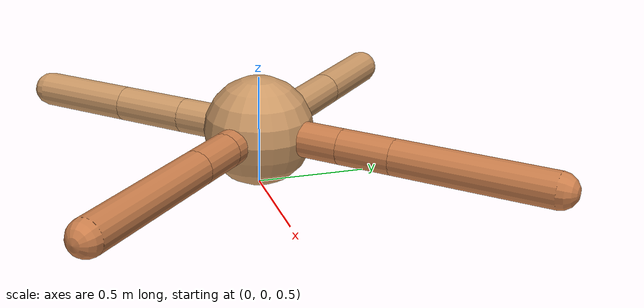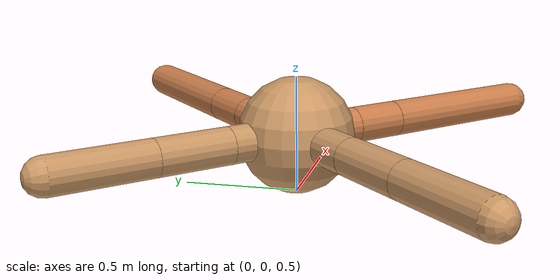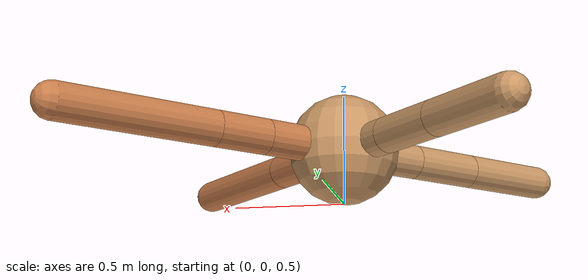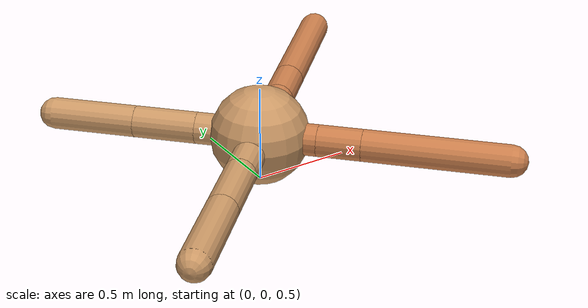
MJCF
<mujoco model="ant">
  <compiler angle="degree" coordinate="local" inertiafromgeom="true" />
  <option integrator="RK4" timestep="0.01" />
  <custom>
    <numeric data="0.0 0.0 0.55 1.0 0.0 0.0 0.0 0.0 1.0 0.0 -1.0 0.0 -1.0 0.0 1.0" name="init_qpos" />
  </custom>
  <default>
    <joint armature="1" damping="1" limited="true" />
    <geom conaffinity="0" condim="3" density="5.0" friction="1.5 0.1 0.1" margin="0.01" rgba="0.8 0.6 0.4 1" />
  </default>
  <worldbody>
    <body name="torso" pos="0 0 0.75">
      <geom name="torso_geom" pos="0 0 0" size="0.25" type="sphere" />

      <body name="front_left_leg" pos="0 0 0">
        <geom fromto="0.0 0.0 0.0 0.29349929990204954 0.29349929990204954 0.0" name="aux_1_geom" size="0.08" type="capsule" rgba=".8 .5 .3 1" />
        <body name="aux_1" pos="0.29349929990204954 0.29349929990204954 0.0">
          <joint axis="0 0 1" name="hip_1" pos="0.0 0.0 0.0" range="-40 40" type="hinge" />
          <geom fromto="0.0 0.0 0.0 0.17265066679960725 0.17265066679960725 0.0" name="left_leg_geom" size="0.08" type="capsule" rgba=".8 .5 .3 1" />
          <body pos="0.17265066679960725 0.17265066679960725 0.0" name="front_left_foot">
            <joint axis="-1 1 0" name="ankle_1" pos="0.0 0.0 0.0" range="30 100" type="hinge" />
            <geom fromto="0.0 0.0 0.0 0.5051362962405612 0.5051362962405612 0.0" name="left_ankle_geom" size="0.08" type="capsule" rgba=".8 .5 .3 1" />
          </body>
        </body>
      </body>
      <body name="front_right_leg" pos="0 0 0">
        <geom fromto="0.0 0.0 0.0 -0.22775030064591634 0.22775030064591634 0.0" name="aux_2_geom" size="0.08" type="capsule" />
        <body name="aux_2" pos="-0.22775030064591634 0.22775030064591634 0.0">
          <joint axis="0 0 1" name="hip_2" pos="0.0 0.0 0.0" range="-40 40" type="hinge" />
          <geom fromto="0.0 0.0 0.0 -0.22706469224688453 0.22706469224688453 0.0" name="right_leg_geom" size="0.08" type="capsule" />
          <body pos="-0.22706469224688453 0.22706469224688453 0.0" name="front_right_foot">
            <joint axis="1 1 0" name="ankle_2" pos="0.0 0.0 0.0" range="-100 -30" type="hinge" />
            <geom fromto="0.0 0.0 0.0 -0.3040118763728831 0.3040118763728831 0.0" name="right_ankle_geom" size="0.08" type="capsule" />
          </body>
        </body>
      </body>
      <body name="left_back_leg" pos="0 0 0">
        <geom fromto="0.0 0.0 0.0 -0.28248573667555416 -0.28248573667555416 0.0" name="aux_3_geom" size="0.08" type="capsule" />
        <body name="aux_3" pos="-0.28248573667555416 -0.28248573667555416 0.0">
          <joint axis="0 0 1" name="hip_3" pos="0.0 0.0 0.0" range="-40 40" type="hinge" />
          <geom fromto="0.0 0.0 0.0 -0.23738079297263237 -0.23738079297263237 0.0" name="back_leg_geom" size="0.08" type="capsule" />
          <body pos="-0.23738079297263237 -0.23738079297263237 0.0" name="left_back_foot">
            <joint axis="-1 1 0" name="ankle_3" pos="0.0 0.0 0.0" range="-100 -30" type="hinge" />
            <geom fromto="0.0 0.0 0.0 -0.3229903450450166 -0.3229903450450166 0.0" name="third_ankle_geom" size="0.08" type="capsule" />
          </body>
        </body>
      </body>
      <body name="right_back_leg" pos="0 0 0">
        <geom fromto="0.0 0.0 0.0 0.20756907747855602 -0.20756907747855602 0.0" name="aux_4_geom" size="0.08" type="capsule" rgba=".8 .5 .3 1" />
        <body name="aux_4" pos="0.20756907747855602 -0.20756907747855602 0.0">
          <joint axis="0 0 1" name="hip_4" pos="0.0 0.0 0.0" range="-40 40" type="hinge" />
          <geom fromto="0.0 0.0 0.0 0.15668759211765232 -0.15668759211765232 0.0" name="rightback_leg_geom" size="0.08" type="capsule" rgba=".8 .5 .3 1" />
          <body pos="0.15668759211765232 -0.15668759211765232 0.0" name="right_back_foot">
            <joint axis="1 1 0" name="ankle_4" pos="0.0 0.0 0.0" range="30 100" type="hinge" />
            <geom fromto="0.0 0.0 0.0 0.5132195735047856 -0.5132195735047856 0.0" name="fourth_ankle_geom" size="0.08" type="capsule" rgba=".8 .5 .3 1" />
          </body>
        </body>
      </body>
    </body>
  </worldbody>
  <actuator>
    <motor ctrllimited="true" ctrlrange="-1.0 1.0" joint="hip_4" gear="150" />
    <motor ctrllimited="true" ctrlrange="-1.0 1.0" joint="ankle_4" gear="150" />
    <motor ctrllimited="true" ctrlrange="-1.0 1.0" joint="hip_1" gear="150" />
    <motor ctrllimited="true" ctrlrange="-1.0 1.0" joint="ankle_1" gear="150" />
    <motor ctrllimited="true" ctrlrange="-1.0 1.0" joint="hip_2" gear="150" />
    <motor ctrllimited="true" ctrlrange="-1.0 1.0" joint="ankle_2" gear="150" />
    <motor ctrllimited="true" ctrlrange="-1.0 1.0" joint="hip_3" gear="150" />
    <motor ctrllimited="true" ctrlrange="-1.0 1.0" joint="ankle_3" gear="150" />
  </actuator>
</mujoco>
